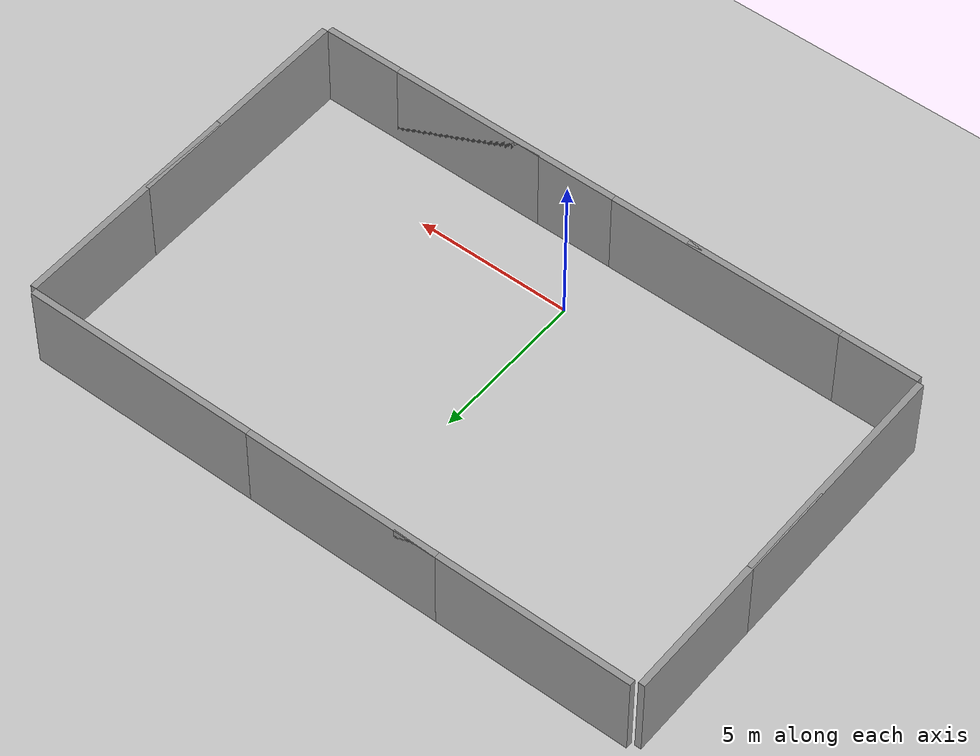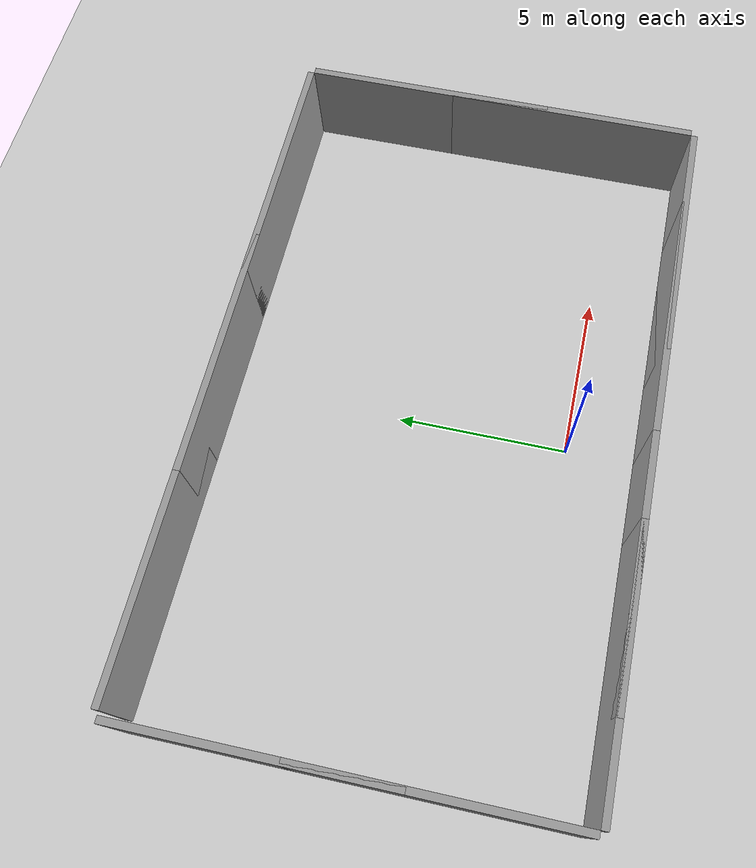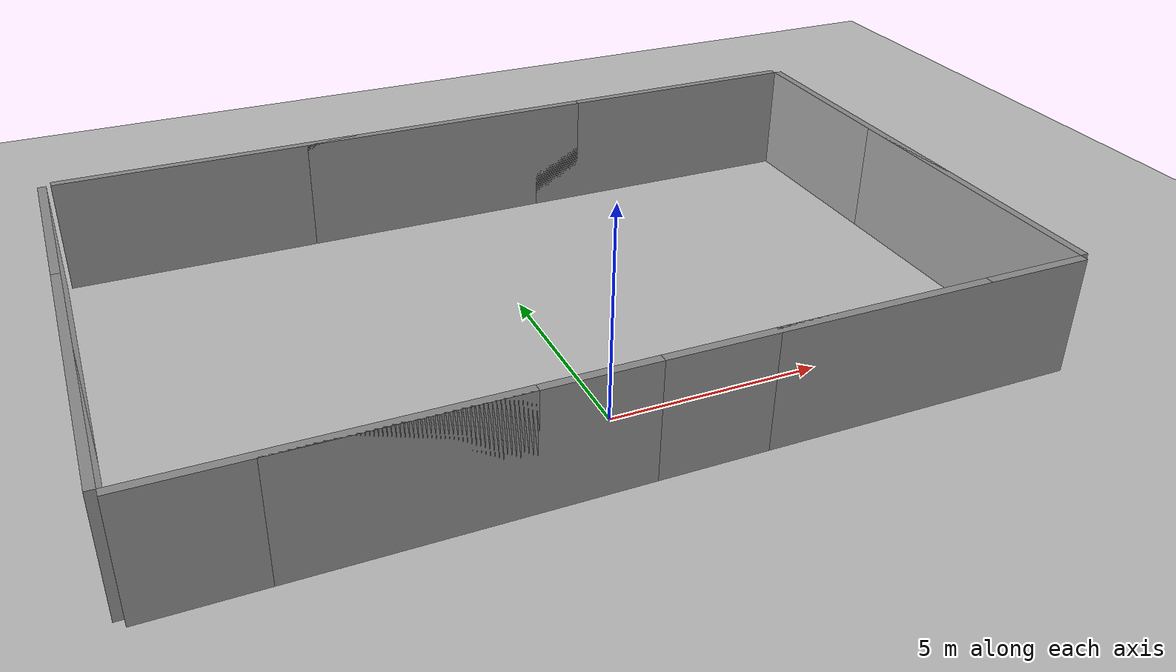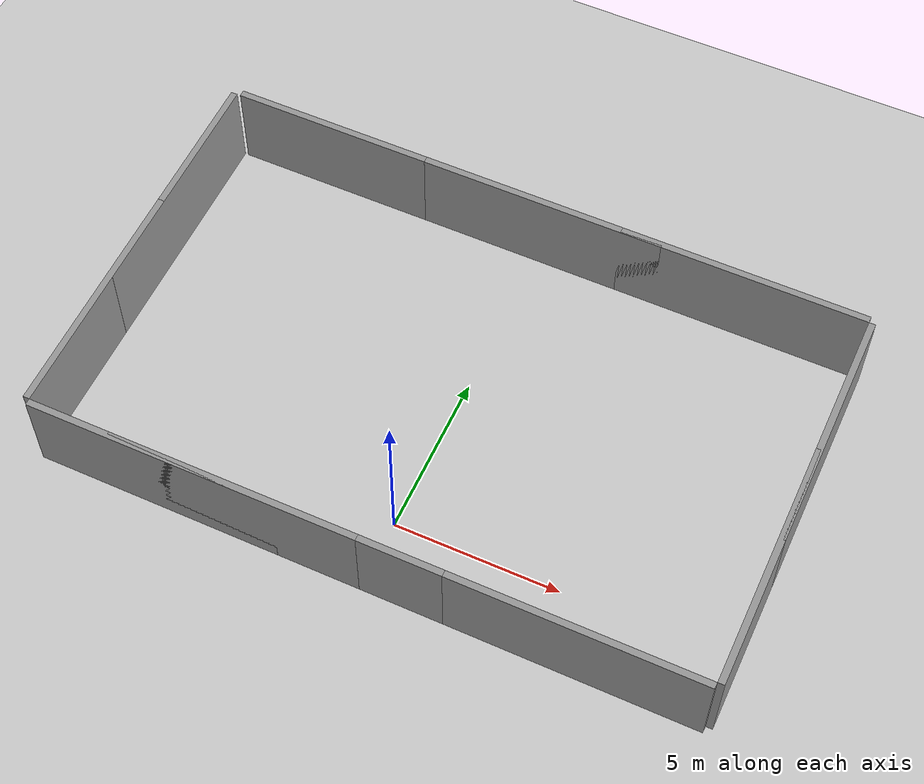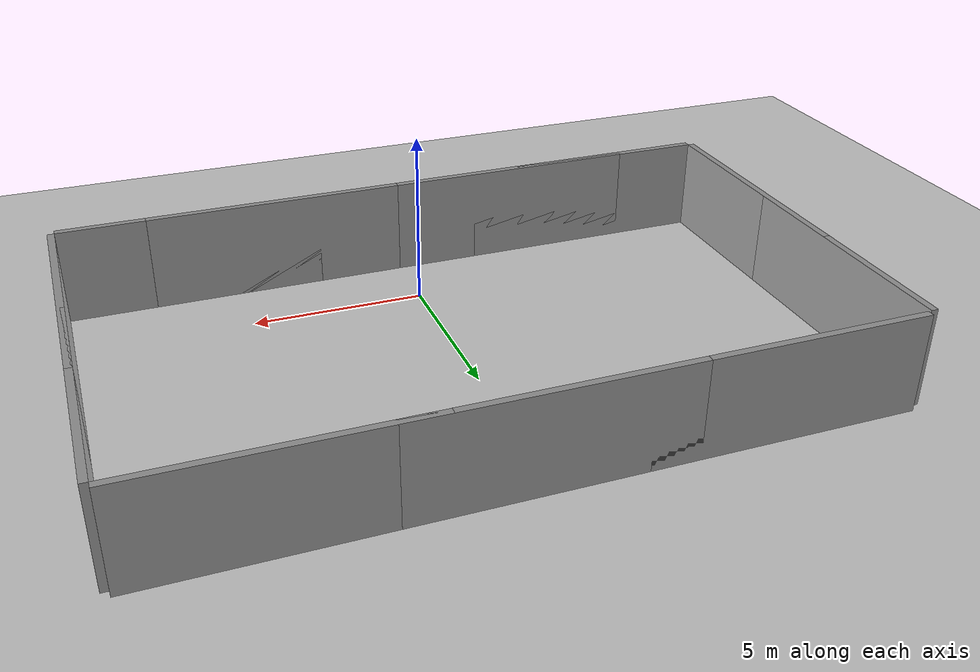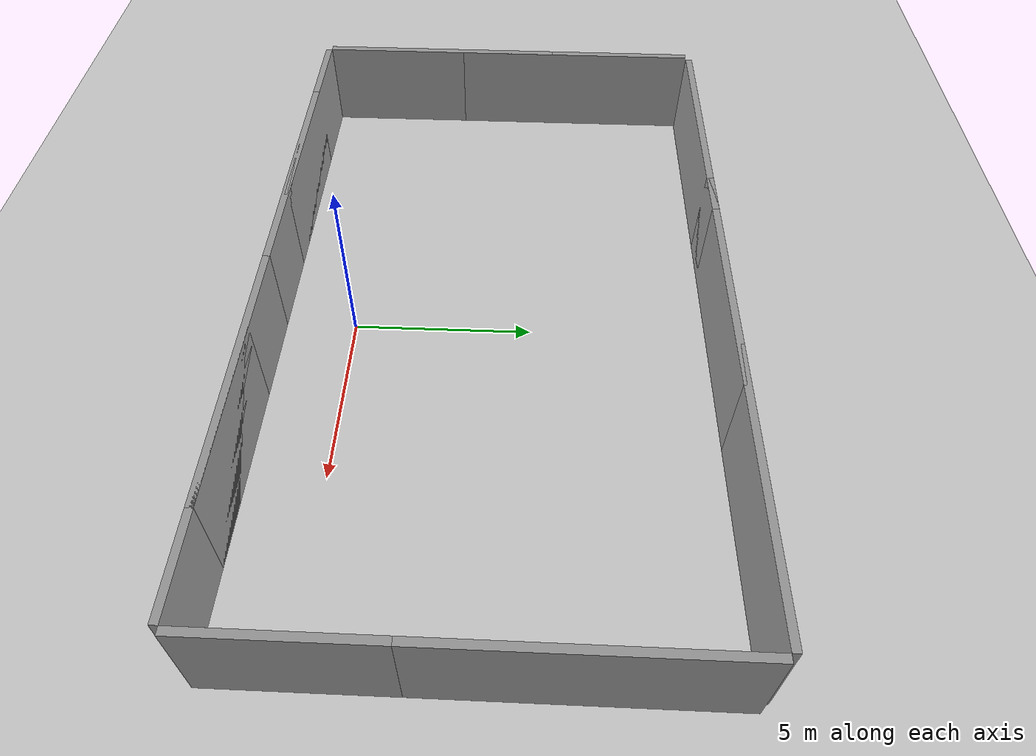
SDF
<sdf version="1.6">
 <world name="default">
  <light name="sun" type="directional">
   <pose>0 0 10 0 -0 0</pose>
   <diffuse>0.8 0.8 0.8 1</diffuse>
   <specular>0.2 0.2 0.2 1</specular>
   <attenuation>
    <range>1000</range>
    <constant>0.9</constant>
    <linear>0.01</linear>
    <quadratic>0.001</quadratic>
   </attenuation>
   <direction>-0.5 0.1 -0.9</direction>
  </light>
  <model name="ground_plane">
   <static>1</static>
   <link name="link">
    <collision name="collision">
     <geometry><plane><normal>0 0 1</normal><size>100 100</size></plane></geometry>
     <surface>
      <contact><collide_bitmask>65535</collide_bitmask></contact>
      <friction><ode><mu>100</mu><mu2>50</mu2></ode></friction>
     </surface>
    </collision>
    <visual name="visual">
     <cast_shadows>0</cast_shadows>
     <geometry><plane><normal>0 0 1</normal><size>100 100</size></plane></geometry>
     <material>
      <script><uri>file://media/materials/scripts/gazebo.material</uri><name>Gazebo/Grey</name></script>
     </material>
    </visual>
   </link>
  </model>
  <gravity>0 0 -9.8</gravity>
  <magnetic_field>6e-06 2.3e-05 -4.2e-05</magnetic_field>
  <atmosphere type="adiabatic"/>
  <physics name="default_physics" default="0" type="ode">
   <max_step_size>0.001</max_step_size>
   <real_time_factor>1</real_time_factor>
   <real_time_update_rate>1000</real_time_update_rate>
  </physics>
  <scene><ambient>0.4 0.4 0.4 1</ambient><background>0.7 0.7 0.7 1</background><shadows>1</shadows></scene>
  <audio><device>default</device></audio>
  <spherical_coordinates>
   <surface_model>EARTH_WGS84</surface_model>
   <latitude_deg>0</latitude_deg>
   <longitude_deg>0</longitude_deg>
   <elevation>0</elevation>
   <heading_deg>0</heading_deg>
  </spherical_coordinates>
  <model name="grey_wall">
   <static>1</static>
   <link name="link">
    <pose>0 0 1.4 0 -0 0</pose>
    <collision name="collision"><geometry><box><size>7.5 0.2 2.8</size></box></geometry></collision>
    <visual name="visual">
     <cast_shadows>0</cast_shadows>
     <geometry><box><size>7.5 0.2 2.8</size></box></geometry>
     <material>
      <script>
       <uri>model://grey_wall/materials/scripts</uri>
       <uri>model://grey_wall/materials/textures</uri>
       <name>vrc/grey_wall</name>
      </script>
     </material>
    </visual>
   </link>
   <pose>-3.75 -2.1 0 0 -0 0</pose>
  </model>
  <model name="grey_wall_0">
   <static>1</static>
   <link name="link">
    <pose>0 0 1.4 0 -0 0</pose>
    <collision name="collision"><geometry><box><size>7.5 0.2 2.8</size></box></geometry></collision>
    <visual name="visual">
     <cast_shadows>0</cast_shadows>
     <geometry><box><size>7.5 0.2 2.8</size></box></geometry>
     <material>
      <script>
       <uri>model://grey_wall/materials/scripts</uri>
       <uri>model://grey_wall/materials/textures</uri>
       <name>vrc/grey_wall</name>
      </script>
     </material>
    </visual>
   </link>
   <pose>3.75 -2.1 0 0 -0 0</pose>
  </model>
  <model name="grey_wall_1">
   <static>1</static>
   <link name="link">
    <pose>0 0 1.4 0 -0 0</pose>
    <collision name="collision"><geometry><box><size>7.5 0.2 2.8</size></box></geometry></collision>
    <visual name="visual">
     <cast_shadows>0</cast_shadows>
     <geometry><box><size>7.5 0.2 2.8</size></box></geometry>
     <material>
      <script>
       <uri>model://grey_wall/materials/scripts</uri>
       <uri>model://grey_wall/materials/textures</uri>
       <name>vrc/grey_wall</name>
      </script>
     </material>
    </visual>
   </link>
   <pose>-6.25 -2.1 0 0 -0 0</pose>
  </model>
  <model name="grey_wall_2">
   <static>1</static>
   <link name="link">
    <pose>0 0 1.4 0 -0 0</pose>
    <collision name="collision"><geometry><box><size>7.5 0.2 2.8</size></box></geometry></collision>
    <visual name="visual">
     <cast_shadows>0</cast_shadows>
     <geometry><box><size>7.5 0.2 2.8</size></box></geometry>
     <material>
      <script>
       <uri>model://grey_wall/materials/scripts</uri>
       <uri>model://grey_wall/materials/textures</uri>
       <name>vrc/grey_wall</name>
      </script>
     </material>
    </visual>
   </link>
   <pose>6.25 -2.1 0 0 -0 0</pose>
  </model>
  <model name="grey_wall_3">
   <static>1</static>
   <link name="link">
    <pose>0 0 1.4 0 -0 0</pose>
    <collision name="collision"><geometry><box><size>7.5 0.2 2.8</size></box></geometry></collision>
    <visual name="visual">
     <cast_shadows>0</cast_shadows>
     <geometry><box><size>7.5 0.2 2.8</size></box></geometry>
     <material>
      <script>
       <uri>model://grey_wall/materials/scripts</uri>
       <uri>model://grey_wall/materials/textures</uri>
       <name>vrc/grey_wall</name>
      </script>
     </material>
    </visual>
   </link>
   <pose>-10.1 1.75 0 0 -0 1.5708</pose>
  </model>
  <model name="grey_wall_3_clone">
   <static>1</static>
   <link name="link">
    <pose>0 0 1.4 0 -0 0</pose>
    <collision name="collision"><geometry><box><size>7.5 0.2 2.8</size></box></geometry></collision>
    <visual name="visual">
     <cast_shadows>0</cast_shadows>
     <geometry><box><size>7.5 0.2 2.8</size></box></geometry>
     <material>
      <script>
       <uri>model://grey_wall/materials/scripts</uri>
       <uri>model://grey_wall/materials/textures</uri>
       <name>vrc/grey_wall</name>
      </script>
     </material>
    </visual>
   </link>
   <pose>-10.1 6.25 0 0 -0 1.5708</pose>
  </model>
  <model name="grey_wall_3_clone_clone">
   <static>1</static>
   <link name="link">
    <pose>0 0 1.4 0 -0 0</pose>
    <collision name="collision"><geometry><box><size>7.5 0.2 2.8</size></box></geometry></collision>
    <visual name="visual">
     <cast_shadows>0</cast_shadows>
     <geometry><box><size>7.5 0.2 2.8</size></box></geometry>
     <material>
      <script>
       <uri>model://grey_wall/materials/scripts</uri>
       <uri>model://grey_wall/materials/textures</uri>
       <name>vrc/grey_wall</name>
      </script>
     </material>
    </visual>
   </link>
   <pose>10.1 6.25 0 0 -0 1.5708</pose>
  </model>
  <model name="grey_wall_3_clone_clone_0">
   <static>1</static>
   <link name="link">
    <pose>0 0 1.4 0 -0 0</pose>
    <collision name="collision"><geometry><box><size>7.5 0.2 2.8</size></box></geometry></collision>
    <visual name="visual">
     <cast_shadows>0</cast_shadows>
     <geometry><box><size>7.5 0.2 2.8</size></box></geometry>
     <material>
      <script>
       <uri>model://grey_wall/materials/scripts</uri>
       <uri>model://grey_wall/materials/textures</uri>
       <name>vrc/grey_wall</name>
      </script>
     </material>
    </visual>
   </link>
   <pose>10.1 1.75 0 0 -0 1.5708</pose>
  </model>
  <model name="grey_wall_1_clone">
   <static>1</static>
   <link name="link">
    <pose>0 0 1.4 0 -0 0</pose>
    <collision name="collision"><geometry><box><size>7.5 0.2 2.8</size></box></geometry></collision>
    <visual name="visual">
     <cast_shadows>0</cast_shadows>
     <geometry><box><size>7.5 0.2 2.8</size></box></geometry>
     <material>
      <script>
       <uri>model://grey_wall/materials/scripts</uri>
       <uri>model://grey_wall/materials/textures</uri>
       <name>vrc/grey_wall</name>
      </script>
     </material>
    </visual>
   </link>
   <pose>-6.15 10.1 0 0 -0 0</pose>
  </model>
  <model name="grey_wall_clone">
   <static>1</static>
   <link name="link">
    <pose>0 0 1.4 0 -0 0</pose>
    <collision name="collision"><geometry><box><size>7.5 0.2 2.8</size></box></geometry></collision>
    <visual name="visual">
     <cast_shadows>0</cast_shadows>
     <geometry><box><size>7.5 0.2 2.8</size></box></geometry>
     <material>
      <script>
       <uri>model://grey_wall/materials/scripts</uri>
       <uri>model://grey_wall/materials/textures</uri>
       <name>vrc/grey_wall</name>
      </script>
     </material>
    </visual>
   </link>
   <pose>0 10.1 0 0 -0 0</pose>
  </model>
  <model name="grey_wall_clone_0">
   <static>1</static>
   <link name="link">
    <pose>0 0 1.4 0 -0 0</pose>
    <collision name="collision"><geometry><box><size>7.5 0.2 2.8</size></box></geometry></collision>
    <visual name="visual">
     <cast_shadows>0</cast_shadows>
     <geometry><box><size>7.5 0.2 2.8</size></box></geometry>
     <material>
      <script>
       <uri>model://grey_wall/materials/scripts</uri>
       <uri>model://grey_wall/materials/textures</uri>
       <name>vrc/grey_wall</name>
      </script>
     </material>
    </visual>
   </link>
   <pose>6.25 10.1 0 0 -0 0</pose>
  </model>
 </world>
</sdf>
